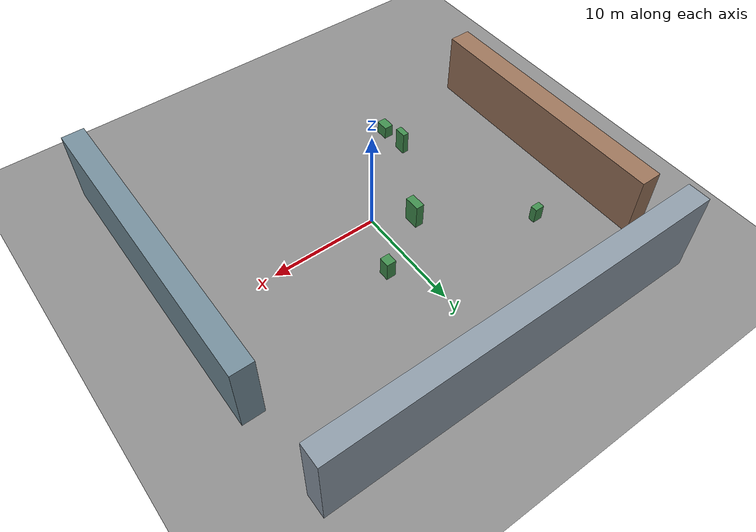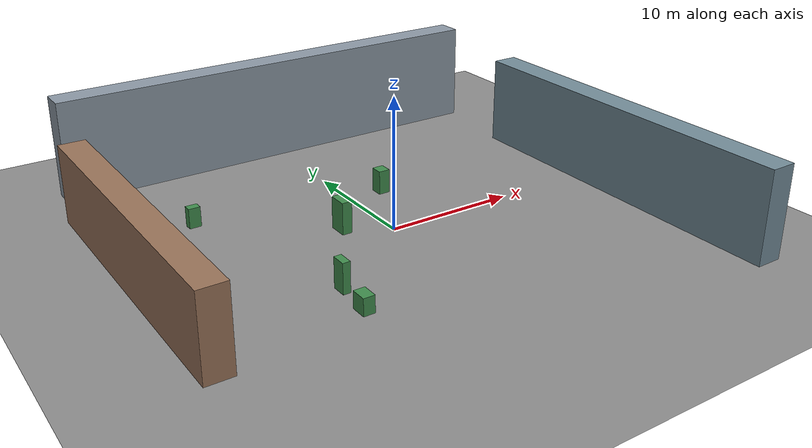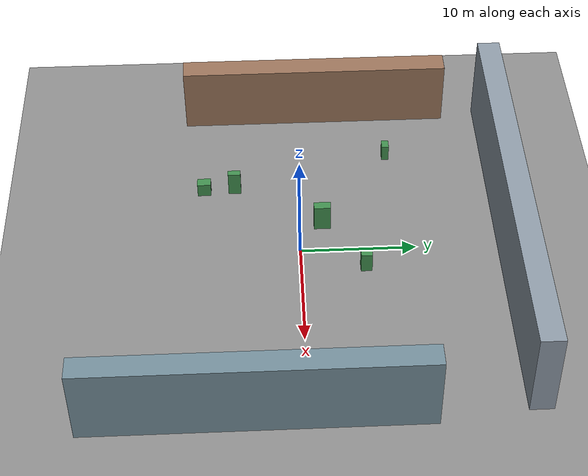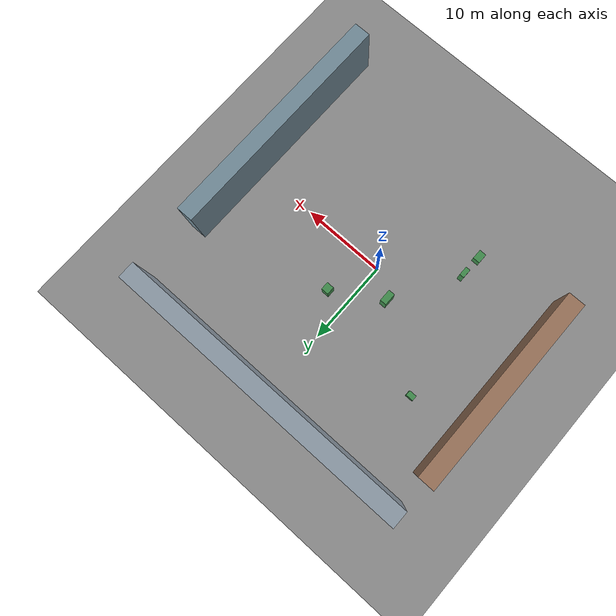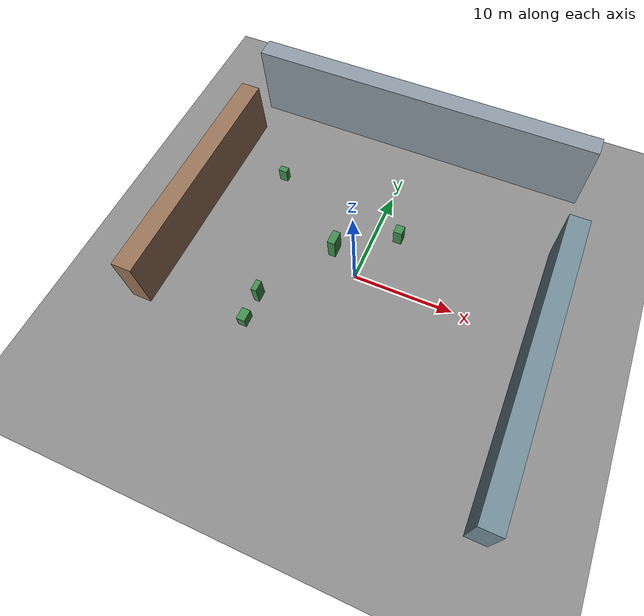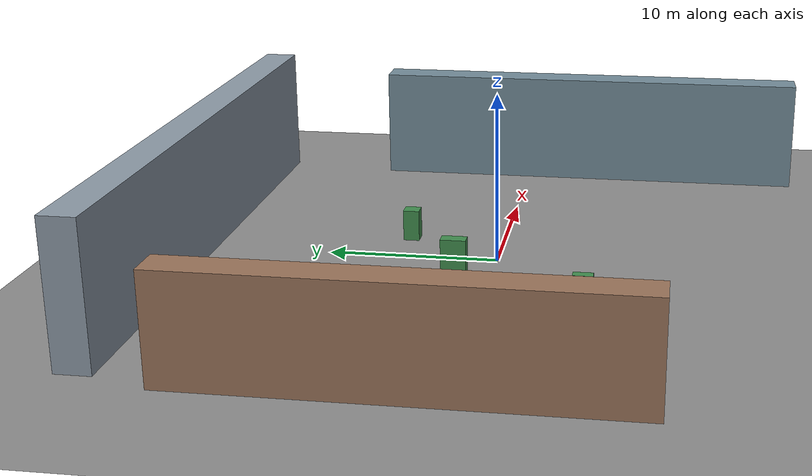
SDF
<?xml version="1.0"?>
<sdf version="1.6">
  <world name="outdoor_normal_medium_1">
    <physics name="default_physics" type="ode">
      <real_time_update_rate>1000</real_time_update_rate>
      <max_step_size>0.001</max_step_size>
    </physics>
    <scene>
      <ambient>0.35750000000000004 0.35750000000000004 0.35750000000000004 1</ambient>
      <background>0.08 0.09 0.12 1</background>
      <shadows>true</shadows>
    </scene>
    <light name="sun" type="directional">
      <cast_shadows>true</cast_shadows>
      <pose>0 0 20 0 0 0</pose>
      <diffuse>0.65 0.65 0.65 1.0</diffuse>
      <specular>0.65 0.65 0.65 1.0</specular>
      <direction>-0.5 0.2 -1</direction>
    </light>
    <model name="ground_plane">
      <static>true</static>
      <link name="link">
        <collision name="collision"><geometry><plane><normal>0 0 1</normal><size>100 100</size></plane></geometry></collision>
        <visual name="visual">
          <geometry><plane><normal>0 0 1</normal><size>100 100</size></plane></geometry>
          <material><ambient>0.35 0.35 0.35 1</ambient><diffuse>0.55 0.55 0.55 1</diffuse></material>
        </visual>
      </link>
    </model>

    <model name="building_north">
      <static>true</static>
      <pose>0.0000 18.0000 4.0000 0 0 0</pose>
      <link name="link">
        <collision name="collision"><geometry><box><size>36 2 8</size></box></geometry></collision>
        <visual name="visual">
          <geometry><box><size>36 2 8</size></box></geometry>
          <material><ambient>0.55 0.60 0.65 1</ambient><diffuse>0.55 0.60 0.65 1</diffuse></material>
        </visual>
      </link>
    </model>

    <model name="building_west">
      <static>true</static>
      <pose>-18.0000 2.0000 3.0000 0 0 0</pose>
      <link name="link">
        <collision name="collision"><geometry><box><size>2 24 6</size></box></geometry></collision>
        <visual name="visual">
          <geometry><box><size>2 24 6</size></box></geometry>
          <material><ambient>0.60 0.45 0.35 1</ambient><diffuse>0.60 0.45 0.35 1</diffuse></material>
        </visual>
      </link>
    </model>

    <model name="facade_east">
      <static>true</static>
      <pose>18.0000 -4.0000 3.5000 0 0 0</pose>
      <link name="link">
        <collision name="collision"><geometry><box><size>2 28 7</size></box></geometry></collision>
        <visual name="visual">
          <geometry><box><size>2 28 7</size></box></geometry>
          <material><ambient>0.45 0.55 0.60 1</ambient><diffuse>0.45 0.55 0.60 1</diffuse></material>
        </visual>
      </link>
    </model>

    <model name="outdoor_feature_0">
      <static>true</static>
      <pose>-3.0810 2.0455 1.1622 0 0 0</pose>
      <link name="link">
        <collision name="collision"><geometry><box><size>0.769034847439884 1.4518757017603758 2.4850286426252053</size></box></geometry></collision>
        <visual name="visual">
          <geometry><box><size>0.769034847439884 1.4518757017603758 2.4850286426252053</size></box></geometry>
          <material><ambient>0.25 0.55 0.30 1</ambient><diffuse>0.25 0.55 0.30 1</diffuse></material>
        </visual>
      </link>
    </model>

    <model name="outdoor_feature_1">
      <static>true</static>
      <pose>-7.5927 -5.5413 1.2893 0 0 0</pose>
      <link name="link">
        <collision name="collision"><geometry><box><size>0.5591068183972118 1.0983846255082672 2.2439498311748043</size></box></geometry></collision>
        <visual name="visual">
          <geometry><box><size>0.5591068183972118 1.0983846255082672 2.2439498311748043</size></box></geometry>
          <material><ambient>0.25 0.55 0.30 1</ambient><diffuse>0.25 0.55 0.30 1</diffuse></material>
        </visual>
      </link>
    </model>

    <model name="outdoor_feature_2">
      <static>true</static>
      <pose>2.4449 5.5049 1.2089 0 0 0</pose>
      <link name="link">
        <collision name="collision"><geometry><box><size>0.8797810502775545 0.9514658356730512 1.8507823412040394</size></box></geometry></collision>
        <visual name="visual">
          <geometry><box><size>0.8797810502775545 0.9514658356730512 1.8507823412040394</size></box></geometry>
          <material><ambient>0.25 0.55 0.30 1</ambient><diffuse>0.25 0.55 0.30 1</diffuse></material>
        </visual>
      </link>
    </model>

    <model name="outdoor_feature_3">
      <static>true</static>
      <pose>-11.7182 8.2110 0.8674 0 0 0</pose>
      <link name="link">
        <collision name="collision"><geometry><box><size>0.8951812067636344 0.6193068325595428 1.5345422967918125</size></box></geometry></collision>
        <visual name="visual">
          <geometry><box><size>0.8951812067636344 0.6193068325595428 1.5345422967918125</size></box></geometry>
          <material><ambient>0.25 0.55 0.30 1</ambient><diffuse>0.25 0.55 0.30 1</diffuse></material>
        </visual>
      </link>
    </model>

    <model name="outdoor_feature_4">
      <static>true</static>
      <pose>-7.6757 -8.2539 0.7125 0 0 0</pose>
      <link name="link">
        <collision name="collision"><geometry><box><size>0.8546882256305122 1.180903503009862 1.2677491247588155</size></box></geometry></collision>
        <visual name="visual">
          <geometry><box><size>0.8546882256305122 1.180903503009862 1.2677491247588155</size></box></geometry>
          <material><ambient>0.25 0.55 0.30 1</ambient><diffuse>0.25 0.55 0.30 1</diffuse></material>
        </visual>
      </link>
    </model>
  </world>
</sdf>
